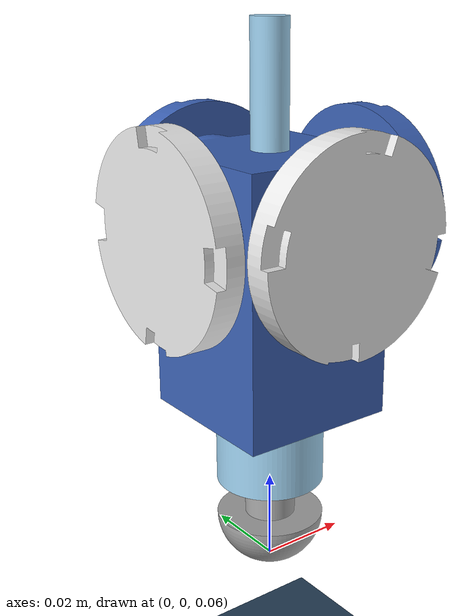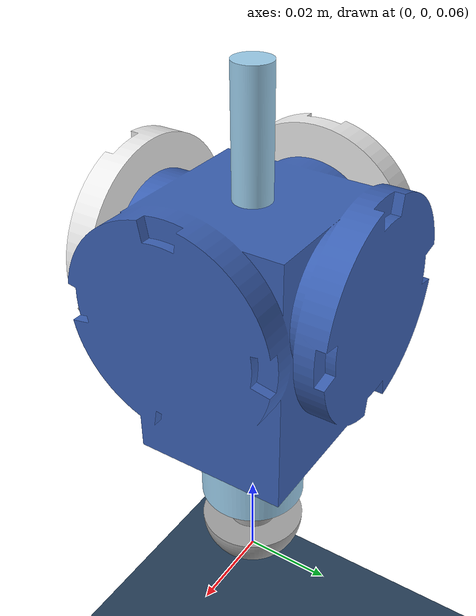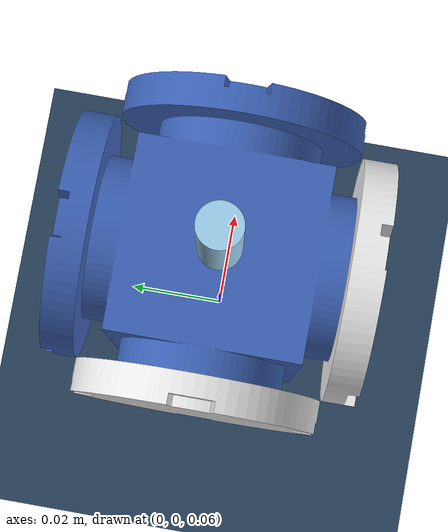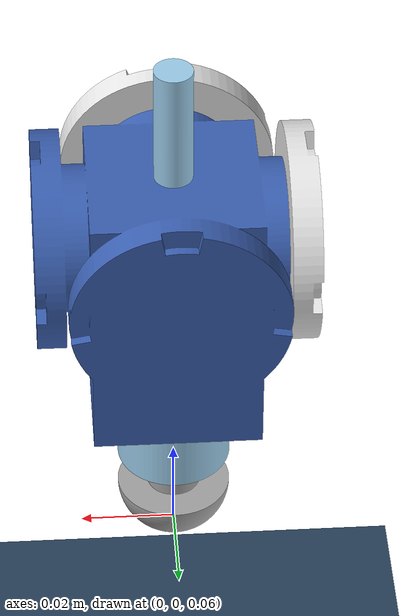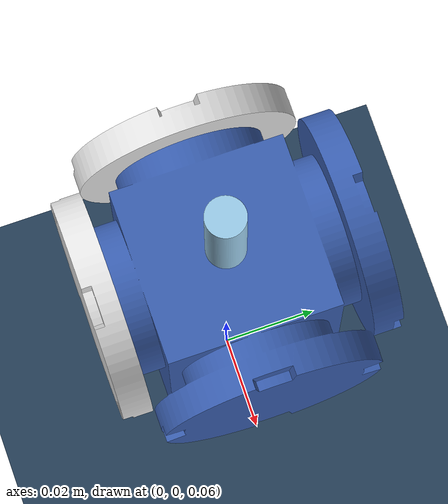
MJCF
<mujoco model="scene">
    <include file="jamebot_v1.xml" />

    <visual>
        <headlight diffuse="0.6 0.6 0.6" ambient="0.3 0.3 0.3" specular="0 0 0" />
        <rgba haze="0.15 0.25 0.35 1" />
        <global azimuth="160" elevation="-20" />
    </visual>

    <asset>
        <texture type="skybox" builtin="gradient" rgb1="0.3 0.5 0.7" rgb2="0 0 0" width="512"
            height="3072" />
        <texture type="2d" name="groundplane" builtin="checker" mark="edge" rgb1="0.2 0.3 0.4"
            rgb2="0.1 0.2 0.3"
            markrgb="0.8 0.8 0.8" width="300" height="300" />
        <material name="groundplane" texture="groundplane" texuniform="true" texrepeat="5 5"
            reflectance="0.2" />
    </asset>

    <worldbody>
        <light pos="0 0 3.5" dir="0 0 -1" directional="true" />
        <geom name="floor" size="0 0 0.05" pos="0 0 0" type="plane" material="groundplane" />
    </worldbody>
</mujoco>

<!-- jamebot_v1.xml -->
<!-- Generated using onshape-to-robot -->
<!-- Onshape https://cad.onshape.com/documents/e7f4e3f1d5df0bd60aa67d40/w/d61673394b14cd7c8b93749f/e/def463a4e1c545cd828b6087 -->
<mujoco model="jamebot">
  <compiler angle="radian" meshdir="assets" autolimits="true"/>
  <default>
    <default class="jamebot">
      <joint frictionloss="0.001" armature="1e-05"/>
      <default class="visual">
        <geom type="mesh" contype="0" conaffinity="0" group="2"/>
      </default>
      <default class="collision">
        <geom group="3"/>
      </default>
    </default>
  </default>
  <worldbody>
    <!-- Link body -->
    <body name="body" pos="0 0 0" quat="1 0 0 0" childclass="jamebot">
      <freejoint name="body_freejoint"/>
      <inertial pos="0.00233397 0.00233397 0.130402" mass="0.269808" fullinertia="0.000113405 0.000113405 9.14441e-05 1.46976e-06 -5.64092e-06 -5.64092e-06"/>
      <!-- Part body -->
      <geom type="mesh" class="visual" pos="0 0 0.00131911" quat="1 0 0 0" mesh="body" material="body_material"/>
      <geom type="mesh" class="collision" pos="0 0 0.00131911" quat="1 0 0 0" mesh="body" material="body_material"/>
      <!-- Link flywheel_1 -->
      <body name="flywheel_1" pos="0 -0.0225 0.13936" quat="0.0657566 -0.0657566 -0.704043 -0.704043">
        <!-- Joint from body to flywheel_1 -->
        <joint axis="0 0 1" name="flywheelY" type="hinge"/>
        <inertial pos="-0 0 -0.0029485" mass="0.0247451" fullinertia="3.08285e-06 3.08285e-06 6.01906e-06 0 0 0"/>
        <!-- Part flywheel_1 -->
        <geom type="mesh" class="visual" pos="-0 0.138041 0.0225" quat="0.707107 0.707107 -0 0" mesh="flywheel_1" material="flywheel_1_material"/>
        <geom type="mesh" class="collision" pos="-0 0.138041 0.0225" quat="0.707107 0.707107 -0 0" mesh="flywheel_1" material="flywheel_1_material"/>
      </body>
      <!-- Link flywheel_2 -->
      <body name="flywheel_2" pos="-0.0225 0 0.13936" quat="0.5 0.5 0.5 0.5">
        <!-- Joint from body to flywheel_2 -->
        <joint axis="0 0 1" name="flywheelX" type="hinge"/>
        <inertial pos="0 0 -0.0029485" mass="0.0247451" fullinertia="3.08285e-06 3.08285e-06 6.01906e-06 0 0 0"/>
        <!-- Part flywheel_2 -->
        <geom type="mesh" class="visual" pos="0 -0.138041 0.0225" quat="0.5 -0.5 -0.5 -0.5" mesh="flywheel_2" material="flywheel_2_material"/>
        <geom type="mesh" class="collision" pos="0 -0.138041 0.0225" quat="0.5 -0.5 -0.5 -0.5" mesh="flywheel_2" material="flywheel_2_material"/>
      </body>
      <!-- Link ballscrew -->
      <body name="ballscrew" pos="0 0 0.15" quat="1 0 0 0">
        <!-- Joint from body to ballscrew -->
        <joint axis="0 0 -1" name="ballscrew" type="slide" range="0 0.1"/>
        <inertial pos="0 0 -0.0405413" mass="0.0361023" fullinertia="2.41068e-05 2.41068e-05 2.42338e-06 0 0 0"/>
        <!-- Part ballscrew -->
        <geom type="mesh" class="visual" pos="0 0 -0.0934308" quat="1 0 0 0" mesh="ballscrew" material="ballscrew_material"/>
        <geom type="mesh" class="collision" pos="0 0 -0.0934308" quat="1 0 0 0" mesh="ballscrew" material="ballscrew_material"/>
        <!-- Link foot -->
        <body name="foot" pos="0 0 -0.0527929" quat="1 0 0 0">
          <inertial pos="0 -0 -0.0229776" mass="0.0167885" fullinertia="2.02489e-06 2.02489e-06 6.77059e-07 0 0 0"/>
          <!-- Part foot -->
          <geom type="mesh" class="visual" pos="0 0 -0.0376424" quat="1 0 0 0" mesh="foot" material="foot_material"/>
          <geom type="mesh" class="collision" pos="0 0 -0.0376424" quat="1 0 0 0" mesh="foot" material="foot_material"/>
        </body>
      </body>
    </body>
  </worldbody>
  <asset>
    <mesh file="body.stl"/>
    <mesh file="foot.stl"/>
    <mesh file="flywheel_2.stl"/>
    <mesh file="ballscrew.stl"/>
    <mesh file="flywheel_1.stl"/>
    <material name="body_material" rgba="0.231373 0.380392 0.705882 1"/>
    <material name="flywheel_1_material" rgba="0.917647 0.917647 0.917647 1"/>
    <material name="flywheel_2_material" rgba="0.917647 0.917647 0.917647 1"/>
    <material name="ballscrew_material" rgba="0.615686 0.811765 0.929412 1"/>
    <material name="foot_material" rgba="0.647059 0.647059 0.647059 1"/>
  </asset>
  <actuator>
    <motor class="jamebot" name="flywheelY" joint="flywheelY" ctrlrange="-10 10" forcerange="-200 200"/>
    <motor class="jamebot" name="flywheelX" joint="flywheelX" ctrlrange="-10 10" forcerange="-200 200"/>
    <motor class="jamebot" name="ballscrew" joint="ballscrew" ctrlrange="-10 10" forcerange="-10 10"/>
  </actuator>
  <equality/>
</mujoco>
